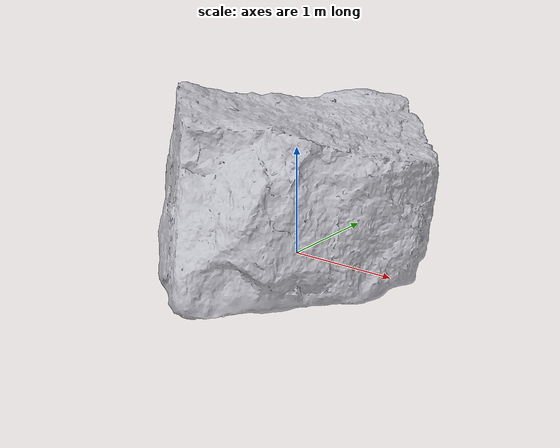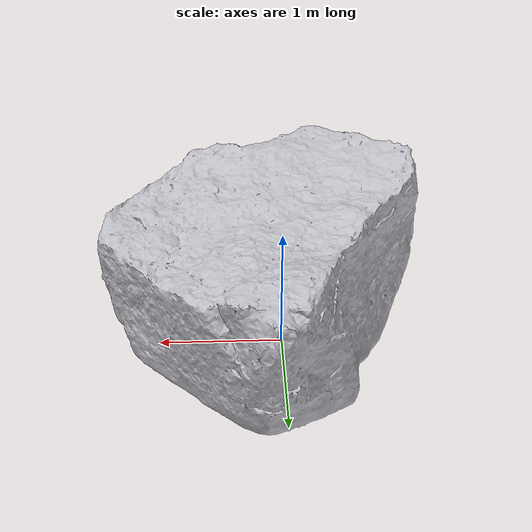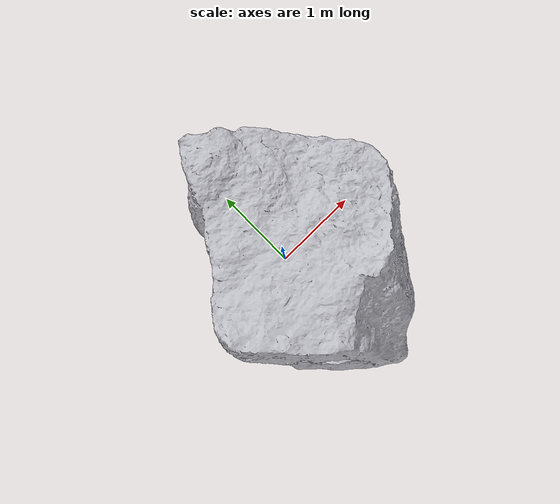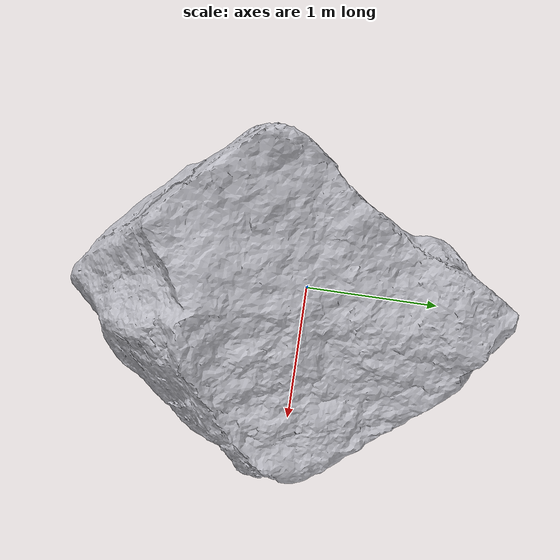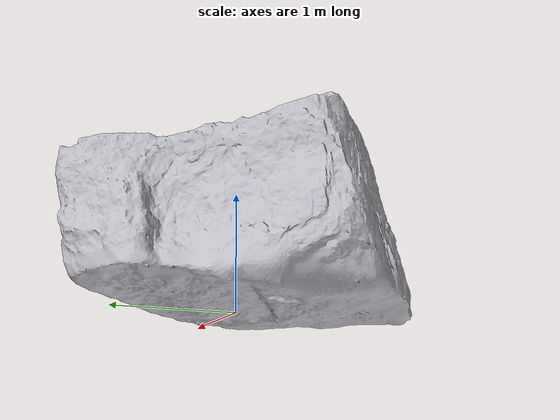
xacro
<?xml version="1.0" ?>
<robot name="rock_1" xmlns:xacro="http://www.ros.org/wiki/xacro">

<xacro:include filename="$(find rock_1_description)/urdf/rock_1.ros2control" />
<xacro:include filename="$(find rock_1_description)/urdf/rock_1.gazebo" />
<link name="base_link">
  <inertial>
    <origin xyz="0.00013608605600893498 -0.00017679786309599877 0.0006621224433183671" rpy="0 0 0"/>
    <mass value="4.023598251611062e-05"/>
    <inertia ixx="4.023598251611062e-05" iyy="4.023598251611062e-05" izz="4.023598251611062e-05" ixy="-0.0" iyz="-0.0" ixz="0.0"/>
  </inertial>
  <visual>
    <origin xyz="0 0 0" rpy="0 0 0"/>
    <geometry>
      <mesh filename="file://$(find rock_1_description)/meshes/base_link.stl" scale="1 1 1"/>
    </geometry>
  </visual>
  <collision>
    <origin xyz="0 0 0" rpy="0 0 0"/>
    <geometry>
      <mesh filename="file://$(find rock_1_description)/meshes/base_link.stl" scale="1 1 1"/>
    </geometry>
  </collision>
</link>

</robot>

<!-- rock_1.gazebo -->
<robot name="rock_1" xmlns:xacro="http://www.ros.org/wiki/xacro" >

<xacro:property name="body_color" value="Gazebo/Silver" />

<gazebo reference="base_link">
  <material>${body_color}</material>
  <mu1>0.2</mu1>
  <mu2>0.2</mu2>
  <self_collide>true</self_collide>
  <gravity>true</gravity>
</gazebo>

</robot>
